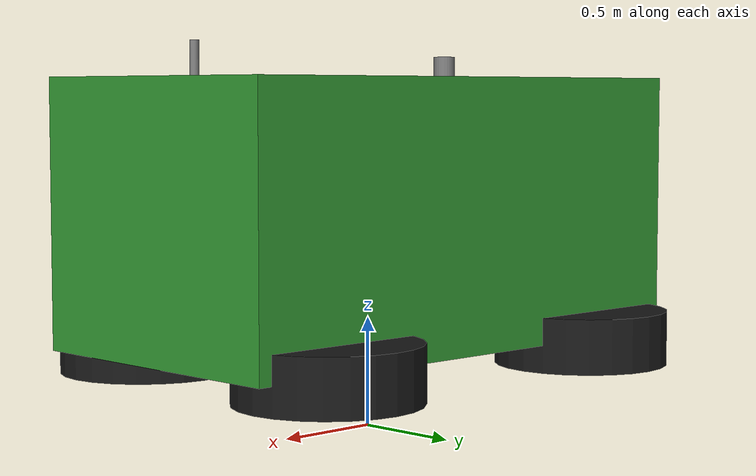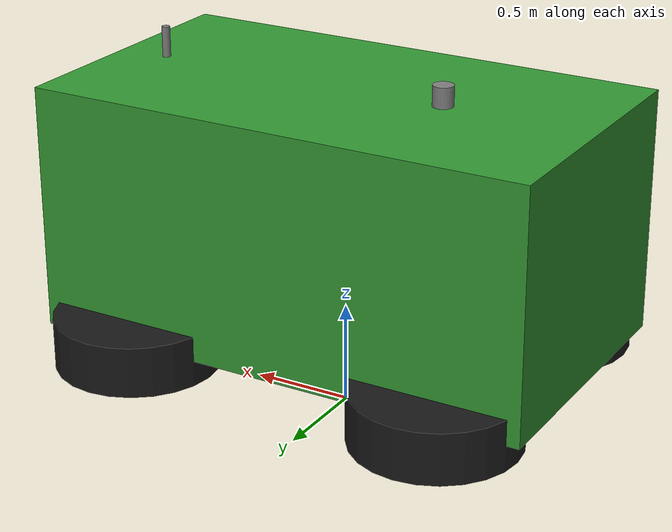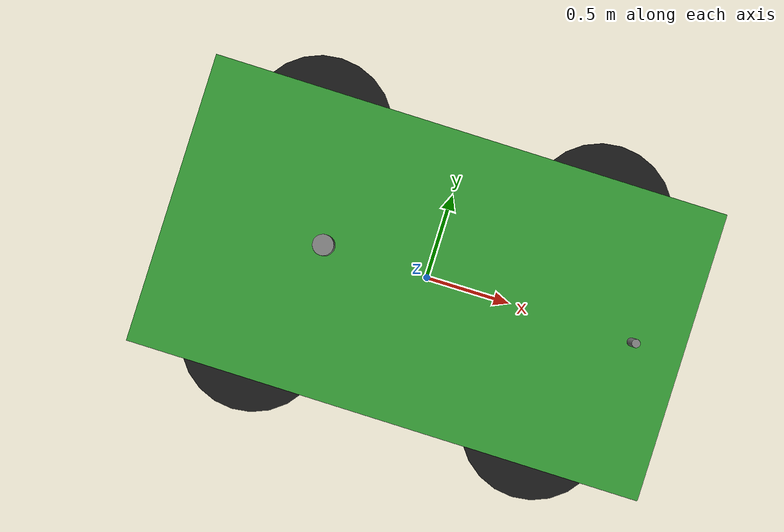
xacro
<?xml version="1.0"?>
<robot xmlns:xacro="http://www.ros.org/wiki/xacro" name="ss500">

  <!-- SS500 Agricultural Tractor - Base URDF -->
  <!-- Dimensions based on typical small agricultural tractor -->

  <!-- Properties -->
  <xacro:property name="base_length" value="2.5"/>
  <xacro:property name="base_width" value="1.4"/>
  <xacro:property name="base_height" value="1.2"/>
  <xacro:property name="base_mass" value="800"/>      <!-- kg -->

  <xacro:property name="wheel_radius" value="0.4"/>
  <xacro:property name="wheel_width" value="0.25"/>
  <xacro:property name="wheel_mass" value="30"/>      <!-- kg -->

  <xacro:property name="wheelbase" value="1.6"/>
  <xacro:property name="track_width" value="1.2"/>

  <!-- Materials -->
  <material name="green">
    <color rgba="0.2 0.6 0.2 1.0"/>
  </material>
  <material name="black">
    <color rgba="0.1 0.1 0.1 1.0"/>
  </material>
  <material name="grey">
    <color rgba="0.5 0.5 0.5 1.0"/>
  </material>
  <material name="glass">
    <color rgba="0.8 0.9 1.0 0.6"/>
  </material>

  <!-- Base Link -->
  <link name="base_footprint">
    <visual>
      <geometry>
        <box size="0.01 0.01 0.01"/>
      </geometry>
    </visual>
  </link>

  <link name="base_link">
    <inertial>
      <origin xyz="0 0 0.6" rpy="0 0 0"/>
      <mass value="${base_mass}"/>
      <inertia ixx="100" ixy="0" ixz="0"
               iyy="150" iyz="0"
               izz="100"/>
    </inertial>
    <visual>
      <origin xyz="0 0 0.6" rpy="0 0 0"/>
      <geometry>
        <box size="${base_length} ${base_width} ${base_height}"/>
      </geometry>
      <material name="green"/>
    </visual>
    <collision>
      <origin xyz="0 0 0.6" rpy="0 0 0"/>
      <geometry>
        <box size="${base_length} ${base_width} ${base_height}"/>
      </geometry>
    </collision>
  </link>

  <joint name="base_joint" type="fixed">
    <parent link="base_footprint"/>
    <child link="base_link"/>
    <origin xyz="0 0 0.4" rpy="0 0 0"/>
  </joint>

  <!-- Wheels -->
  <xacro:macro name="wheel" params="name x y side">
    <link name="${name}_wheel">
      <inertial>
        <origin xyz="0 0 0" rpy="0 0 0"/>
        <mass value="${wheel_mass}"/>
        <inertia ixx="1.0" ixy="0" ixz="0"
                 iyy="1.5" iyz="0"
                 izz="1.0"/>
      </inertial>
      <visual>
        <origin xyz="0 0 0" rpy="0 0 0"/>
        <geometry>
          <cylinder radius="${wheel_radius}" length="${wheel_width}"/>
        </geometry>
        <material name="black"/>
      </visual>
      <collision>
        <origin xyz="0 0 0" rpy="0 0 0"/>
        <geometry>
          <cylinder radius="${wheel_radius}" length="${wheel_width}"/>
        </geometry>
      </collision>
    </link>

    <joint name="${name}_wheel_joint" type="continuous">
      <parent link="base_link"/>
      <child link="${name}_wheel"/>
      <origin xyz="${x} ${y} 0" rpy="0 0 0"/>
      <axis xyz="0 1 0"/>
    </joint>
  </xacro:macro>

  <!-- 4 Wheels -->
  <xacro:wheel name="front_left" x="${wheelbase/2}" y="${track_width/2}" side="left"/>
  <xacro:wheel name="front_right" x="${wheelbase/2}" y="${-track_width/2}" side="right"/>
  <xacro:wheel name="rear_left" x="${-wheelbase/2}" y="${track_width/2}" side="left"/>
  <xacro:wheel name="rear_right" x="${-wheelbase/2}" y="${-track_width/2}" side="right"/>

  <!-- Camera Mount -->
  <link name="camera_mount">
    <visual>
      <origin xyz="0 0 0" rpy="0 0 0"/>
      <geometry>
        <cylinder radius="0.02" length="0.3"/>
      </geometry>
      <material name="grey"/>
    </visual>
  </link>
  <joint name="camera_mount_joint" type="fixed">
    <parent link="base_link"/>
    <child link="camera_mount"/>
    <origin xyz="1.0 0 1.2" rpy="0 0 0"/>
  </joint>

  <!-- GPS/IMU Mount -->
  <link name="gps_imu_mount">
    <visual>
      <origin xyz="0 0 0" rpy="0 0 0"/>
      <geometry>
        <cylinder radius="0.05" length="0.1"/>
      </geometry>
      <material name="grey"/>
    </visual>
  </link>
  <joint name="gps_imu_mount_joint" type="fixed">
    <parent link="base_link"/>
    <child link="gps_imu_mount"/>
    <origin xyz="-0.5 0 1.25" rpy="0 0 0"/>
  </joint>

</robot>
